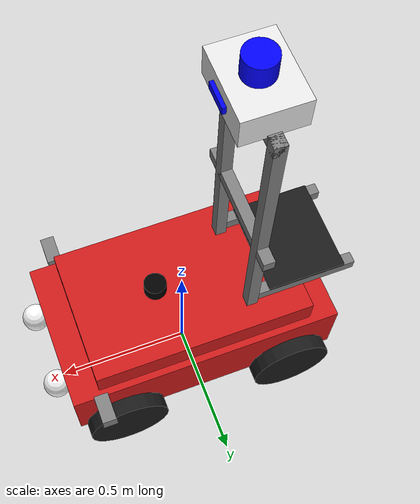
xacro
<?xml version="1.0"?>
<robot name="ttbot" xmlns:xacro="http://www.ros.org/wiki/xacro">

  <xacro:arg name="is_ignition" default="true"/>

  <xacro:include filename="$(find ttbot_description)/urdf/ttbot_gazebo.xacro" />

  <xacro:property name="wheel_radius" value="0.15"/>
  <xacro:property name="wheel_width"  value="0.11"/>
  <xacro:property name="wheelbase"    value="0.65"/>
  <xacro:property name="track_width"  value="0.55"/>
  <xacro:property name="chassis_length" value="1.0"/>
  <xacro:property name="chassis_width"  value="0.55"/>
  <xacro:property name="chassis_height" value="0.25"/>

  <xacro:macro name="inertial_cyl" params="mass r l">
    <inertial>
      <mass value="${mass}"/>
      <origin xyz="0 0 0" rpy="0 0 0"/>
      <inertia ixx="${(1.0/2.0)*mass*r*r}"
               iyy="${(1.0/12.0)*mass*(3*r*r + l*l)}"
               izz="${(1.0/12.0)*mass*(3*r*r + l*l)}"
               ixy="0" ixz="0" iyz="0"/>
    </inertial>
  </xacro:macro>

  <link name="base_link">
    <visual>
      <geometry>
        <box size="${chassis_length} ${chassis_width} ${chassis_height}"/>
      </geometry>
      <origin xyz="0 0 ${wheel_radius + 0.5 * chassis_height}" rpy="0 0 0"/>
      <material name="red"><color rgba="0.8 0.1 0.1 1.0"/></material>
    </visual>

    <visual>
      <origin xyz="0 0 ${wheel_radius + chassis_height}" rpy="0 0 0"/>
      <geometry><box size="0.8 0.5 0.2"/></geometry>
      <material name="darkred"><color rgba="0.8 0.1 0.1 1.0"/></material>
    </visual>

    <visual>
      <origin xyz="0.4 ${0.5*chassis_width + 0.05} ${wheel_radius + chassis_height}"/>
      <geometry><box size="0.05 0.1 0.05"/></geometry>
      <material name="gray"><color rgba="0.5 0.5 0.5 1"/></material>
    </visual>
    <visual>
      <origin xyz="0.4 ${-0.5*chassis_width - 0.05} ${wheel_radius + chassis_height}"/>
      <geometry><box size="0.05 0.1 0.05"/></geometry>
      <material name="gray"><color rgba="0.5 0.5 0.5 1"/></material>
    </visual>

    <visual>
      <origin xyz="${0.5*chassis_length + 0.03} ${0.25*chassis_width} ${wheel_radius + 0.6*chassis_height}"/>
      <geometry><sphere radius="0.05"/></geometry>
      <material name="white"><color rgba="1 1 1 1"/></material>
    </visual>
    <visual>
      <origin xyz="${0.5*chassis_length + 0.03} ${-0.25*chassis_width} ${wheel_radius + 0.6*chassis_height}"/>
      <geometry><sphere radius="0.05"/></geometry>
      <material name="white"><color rgba="1 1 1 1"/></material>
    </visual>

    <collision>
      <origin xyz="0 0 ${wheel_radius + 0.5 * chassis_height}" rpy="0 0 0"/>
      <geometry>
        <box size="${chassis_length} ${chassis_width} ${chassis_height}"/>
      </geometry>
    </collision>

    <inertial>
      <origin xyz="0 0 ${wheel_radius + 0.5 * chassis_height}" rpy="0 0 0"/>
      <mass value="15.0"/>
      <inertia
        ixx="${(1.0/12.0)*15.0*(chassis_width*chassis_width + chassis_height*chassis_height)}"
        iyy="${(1.0/12.0)*15.0*(chassis_length*chassis_length + chassis_height*chassis_height)}"
        izz="${(1.0/12.0)*15.0*(chassis_length*chassis_length + chassis_width*chassis_width)}"
        ixy="0" ixz="0" iyz="0"/>
    </inertial>
  </link>

  <xacro:macro name="wheel_link" params="name">
    <link name="${name}">
      <visual>
        <origin rpy="1.5708 0 0"/>
        <geometry><cylinder radius="${wheel_radius}" length="${wheel_width}"/></geometry>
        <material name="black"><color rgba="0.1 0.1 0.1 1.0"/></material>
      </visual>
      <collision>
        <origin rpy="1.5708 0 0"/>
        <geometry><cylinder radius="${wheel_radius}" length="${wheel_width}"/></geometry>
      </collision>
      <xacro:inertial_cyl mass="1.0" r="${wheel_radius}" l="${wheel_width}"/>
    </link>
  </xacro:macro>

  <link name="front_left_steering_link">
    <collision>
      <origin xyz="0 0 0" rpy="0 0 0"/>
      <geometry>
        <box size="0.01 0.01 0.01"/>
      </geometry>
    </collision>
    <inertial>
      <origin xyz="0 0 0" rpy="0 0 0"/>
      <mass value="0.01"/>
      <inertia
        ixx="1e-6" iyy="1e-6" izz="1e-6"
        ixy="0" ixz="0" iyz="0"/>
    </inertial>
  </link>

  <link name="front_right_steering_link">
    <collision>
      <origin xyz="0 0 0" rpy="0 0 0"/>
      <geometry>
        <box size="0.01 0.01 0.01"/>
      </geometry>
    </collision>
    <inertial>
      <origin xyz="0 0 0" rpy="0 0 0"/>
      <mass value="0.01"/>
      <inertia
        ixx="1e-6" iyy="1e-6" izz="1e-6"
        ixy="0" ixz="0" iyz="0"/>
    </inertial>
  </link>

  <xacro:wheel_link name="front_left_wheel"/>
  <xacro:wheel_link name="front_right_wheel"/>
  <xacro:wheel_link name="rear_left_wheel"/>
  <xacro:wheel_link name="rear_right_wheel"/>

  <joint name="front_left_steering_joint" type="revolute">
    <parent link="base_link"/>
    <child link="front_left_steering_link"/>
    <origin xyz="${0.5*wheelbase} ${0.5*track_width} ${wheel_radius}" rpy="0 0 0"/>
    <axis xyz="0 0 1"/>
    <limit lower="-0.5236" upper="0.5236" effort="20" velocity="1.0"/>
  </joint>

  <joint name="front_right_steering_joint" type="revolute">
    <parent link="base_link"/>
    <child link="front_right_steering_link"/>
    <origin xyz="${0.5*wheelbase} ${-0.5*track_width} ${wheel_radius}" rpy="0 0 0"/>
    <axis xyz="0 0 1"/>
    <limit lower="-0.5236" upper="0.5236" effort="20" velocity="1.0"/>
    <mimic joint="front_left_steering_joint" multiplier="1.0"/>
  </joint>

  <joint name="front_left_wheel_joint" type="continuous">
    <parent link="front_left_steering_link"/>
    <child link="front_left_wheel"/>
    <origin xyz="0 0 0" rpy="0 0 0"/>
    <axis xyz="0 1 0"/>
  </joint>

  <joint name="front_right_wheel_joint" type="continuous">
    <parent link="front_right_steering_link"/>
    <child link="front_right_wheel"/>
    <origin xyz="0 0 0" rpy="0 0 0"/>
    <axis xyz="0 1 0"/>
  </joint>

  <joint name="rear_left_wheel_joint" type="continuous">
    <parent link="base_link"/>
    <child link="rear_left_wheel"/>
    <origin xyz="${-0.5*wheelbase} ${0.5*track_width} ${wheel_radius}" rpy="0 0 0"/>
    <axis xyz="0 1 0"/>
  </joint>

  <joint name="rear_right_wheel_joint" type="continuous">
    <parent link="base_link"/>
    <child link="rear_right_wheel"/>
    <origin xyz="${-0.5*wheelbase} ${-0.5*track_width} ${wheel_radius}" rpy="0 0 0"/>
    <axis xyz="0 1 0"/>
  </joint>

  <link name="sensor_tower_link">

    <visual>
      <origin xyz="0 0.15 0.53" rpy="0 0 0"/>
      <geometry><box size="0.04 0.04 1.06"/></geometry>
      <material name="gray"><color rgba="0.5 0.5 0.5 1"/></material>
    </visual>
    <collision>
      <origin xyz="0 0.15 0.53" rpy="0 0 0"/>
      <geometry><box size="0.04 0.04 1.06"/></geometry>
    </collision>

    <visual>
      <origin xyz="0 -0.15 0.53" rpy="0 0 0"/>
      <geometry><box size="0.04 0.04 1.06"/></geometry>
      <material name="gray"><color rgba="0.5 0.5 0.5 1"/></material>
    </visual>
    <collision>
      <origin xyz="0 -0.15 0.53" rpy="0 0 0"/>
      <geometry><box size="0.04 0.04 1.06"/></geometry>
    </collision>

    <visual>
      <origin xyz="0 0 1.04" rpy="0 0 0"/>
      <geometry><box size="0.04 0.34 0.04"/></geometry>
      <material name="gray"><color rgba="0.5 0.5 0.5 1"/></material>
    </visual>
    <collision>
      <origin xyz="0 0 1.04" rpy="0 0 0"/>
      <geometry><box size="0.04 0.34 0.04"/></geometry>
    </collision>

    <visual>
      <origin xyz="0 0 0.5" rpy="0 0 0"/>
      <geometry><box size="0.04 0.45 0.04"/></geometry>
      <material name="gray"><color rgba="0.5 0.5 0.5 1"/></material>
    </visual>
    <collision>
      <origin xyz="0 0 0.5" rpy="0 0 0"/>
      <geometry><box size="0.04 0.45 0.04"/></geometry>
    </collision>

    <inertial>
      <mass value="1.5"/>
      <origin xyz="0 0 0.53" rpy="0 0 0"/>
      <inertia ixx="0.14" ixy="0" ixz="0" iyy="0.14" iyz="0" izz="0.02"/>
    </inertial>
  </link>

  <joint name="sensor_tower_joint" type="fixed">
    <parent link="base_link"/>
    <child link="sensor_tower_link"/>
    <origin xyz="-0.2 0 ${wheel_radius + chassis_height}" rpy="0 0 0"/>
  </joint>

  <link name="laptop_tray_link">
    <visual>
      <origin xyz="-0.18 0.15 0" rpy="0 0 0"/>
      <geometry><box size="0.36 0.04 0.04"/></geometry>
      <material name="gray"><color rgba="0.5 0.5 0.5 1"/></material>
    </visual>
    <collision>
      <origin xyz="-0.18 0.15 0" rpy="0 0 0"/>
      <geometry><box size="0.36 0.04 0.04"/></geometry>
    </collision>

    <visual>
      <origin xyz="-0.18 -0.15 0" rpy="0 0 0"/>
      <geometry><box size="0.36 0.04 0.04"/></geometry>
      <material name="gray"><color rgba="0.5 0.5 0.5 1"/></material>
    </visual>
    <collision>
      <origin xyz="-0.18 -0.15 0" rpy="0 0 0"/>
      <geometry><box size="0.36 0.04 0.04"/></geometry>
    </collision>

    <visual>
      <origin xyz="-0.18 0 0.025" rpy="0 0 0"/>
      <geometry><box size="0.28 0.34 0.01"/></geometry>
      <material name="black"><color rgba="0.1 0.1 0.1 1"/></material>
    </visual>
    <collision>
      <origin xyz="-0.18 0 0.025" rpy="0 0 0"/>
      <geometry><box size="0.28 0.34 0.01"/></geometry>
    </collision>

    <inertial>
      <mass value="1.0"/>
      <origin xyz="-0.18 0 0" rpy="0 0 0"/>
      <inertia ixx="0.01" ixy="0" ixz="0" iyy="0.01" iyz="0" izz="0.01"/>
    </inertial>
  </link>

  <joint name="laptop_tray_joint" type="fixed">
    <parent link="sensor_tower_link"/>
    <child link="laptop_tray_link"/>
    <origin xyz="-0.02 0 0.15" rpy="0 0 0"/>
  </joint>

  <link name="sensor_box_link">
    <visual>
      <origin xyz="0 0 0" rpy="0 0 0"/>
      <geometry><box size="0.2 0.25 0.1"/></geometry>
      <material name="white"><color rgba="0.9 0.9 0.9 1"/></material>
    </visual>
    <collision>
      <origin xyz="0 0 0" rpy="0 0 0"/>
      <geometry><box size="0.2 0.25 0.1"/></geometry>
    </collision>
    <inertial>
      <mass value="0.5"/>
      <origin xyz="0 0 0" rpy="0 0 0"/>
      <inertia ixx="0.003" ixy="0" ixz="0" iyy="0.002" iyz="0" izz="0.004"/>
    </inertial>
  </link>

  <joint name="sensor_box_joint" type="fixed">
    <parent link="sensor_tower_link"/>
    <child link="sensor_box_link"/>
    <origin xyz="0 0 1.1" rpy="0 0 0"/>
  </joint>

  <link name="imu_link">
    <visual>
      <origin xyz="0 0 0" rpy="0 0 0"/>
      <geometry>
        <cylinder radius="0.04" length="0.05"/>
      </geometry>
      <material name="imu_gray">
        <color rgba="1 1 0 1"/>
      </material>
    </visual>

    <collision>
      <origin xyz="0 0 0" rpy="0 0 0"/>
      <geometry>
        <cylinder radius="0.03" length="0.06"/>
      </geometry>
    </collision>

    <inertial>
      <origin xyz="0 0 0" rpy="0 0 0"/>
      <mass value="0.01"/>
      <inertia
        ixx="1e-6" iyy="1e-6" izz="1e-6"
        ixy="0" ixz="0" iyz="0"/>
    </inertial>
  </link>
  <link name="lidar_link">
    <visual>
      <origin xyz="0 0 0" rpy="0 0 0"/>
      <geometry>
        <cylinder radius="0.05" length="0.07"/>
      </geometry>
      <material name="lidar_blue">
        <color rgba="0 0 1 1"/>
      </material>
    </visual>
    <collision>
      <origin xyz="0 0 0" rpy="0 0 0"/>
      <geometry>
        <cylinder radius="0.05" length="0.07"/>
      </geometry>
    </collision>
    <inertial>
      <mass value="0.1"/>
      <origin xyz="0 0 0" rpy="0 0 0"/>
      <inertia ixx="0.0001" ixy="0" ixz="0" iyy="0.0001" iyz="0" izz="0.0001"/>
    </inertial>
  </link>

  <joint name="lidar_joint" type="fixed">
    <parent link="sensor_box_link"/>
    <child link="lidar_link"/>
    <origin xyz="0 0 0.085" rpy="0 0 0"/>
  </joint>

  <joint name="imu_joint" type="fixed">
    <parent link="sensor_box_link"/>
    <child link="imu_link"/>
    <origin xyz="0 0 0" rpy="0 0 0"/>
  </joint>

  <link name="gps_link">
    <visual>
      <origin xyz="0 0 0" rpy="0 0 0"/>
      <geometry>
        <cylinder radius="0.04" length="0.05"/>
      </geometry>
      <material name="gps_black">
        <color rgba="0 0 0 1"/>
      </material>
    </visual>

    <collision>
      <origin xyz="0 0 0" rpy="0 0 0"/>
      <geometry>
        <cylinder radius="0.03" length="0.06"/>
      </geometry>
    </collision>

    <inertial>
      <origin xyz="0 0 0" rpy="0 0 0"/>
      <mass value="0.01"/>
      <inertia
        ixx="1e-6" iyy="1e-6" izz="1e-6"
        ixy="0" ixz="0" iyz="0"/>
    </inertial>
  </link>

  <joint name="gps_joint" type="fixed">
    <parent link="base_link"/>
    <child link="gps_link"/>
    <origin xyz="0.1 0 ${wheel_radius + chassis_height + 0.13}" rpy="0 0 0"/>
    <axis xyz="0 0 0"/>
  </joint>

  <link name="camera_link">
    <visual>
      <geometry>
        <box size="0.025 0.09 0.025"/>
      </geometry>
      <material name="blue"><color rgba="0 0 1 1"/></material>
    </visual>
    <collision>
      <geometry>
        <box size="0.025 0.09 0.025"/>
      </geometry>
    </collision>
    <inertial>
      <mass value="0.05"/>
      <origin xyz="0 0 0" rpy="0 0 0"/>
      <inertia ixx="1e-6" ixy="0" ixz="0" iyy="1e-6" iyz="0" izz="1e-6"/>
    </inertial>
  </link>

  <joint name="camera_joint" type="fixed">
    <parent link="sensor_box_link"/>
    <child link="camera_link"/>
    <origin xyz="0.1 0 0" rpy="0 0 0"/>
  </joint>

  <link name="camera_color_optical_frame"></link>

  <joint name="camera_optical_joint" type="fixed">
    <parent link="camera_link"/>
    <child link="camera_color_optical_frame"/>
    <origin xyz="0 0 0" rpy="-1.57079632679 0 -1.57079632679"/>
  </joint>

  <ros2_control name="ttbot_system" type="system">
    <hardware>
      <xacro:if value="$(arg is_ignition)">
        <plugin>ign_ros2_control/IgnitionSystem</plugin>
      </xacro:if>
      <xacro:unless value="$(arg is_ignition)">
        <plugin>gz_ros2_control/GazeboSystem</plugin>
      </xacro:unless>

      <param name="passive_joint">front_left_wheel_joint</param>
      <param name="passive_joint">front_right_wheel_joint</param>

    </hardware>

    <joint name="rear_left_wheel_joint">
      <command_interface name="velocity"/>
      <state_interface name="position"/>
      <state_interface name="velocity"/>
    </joint>

    <joint name="rear_right_wheel_joint">
      <command_interface name="velocity"/>
      <state_interface name="position"/>
      <state_interface name="velocity"/>
    </joint>

    <joint name="front_left_steering_joint">
      <command_interface name="position"/>
      <state_interface name="position"/>
      <state_interface name="velocity"/>
    </joint>

    <joint name="front_right_steering_joint">
      <command_interface name="position"/>
      <state_interface name="position"/>
      <state_interface name="velocity"/>
    </joint>

    <joint name="front_left_wheel_joint">
      <state_interface name="position"/>
      <state_interface name="velocity"/>
    </joint>

    <joint name="front_right_wheel_joint">
      <state_interface name="position"/>
      <state_interface name="velocity"/>
    </joint>

  </ros2_control>
  <xacro:ttbot_gazebo/>

</robot>
